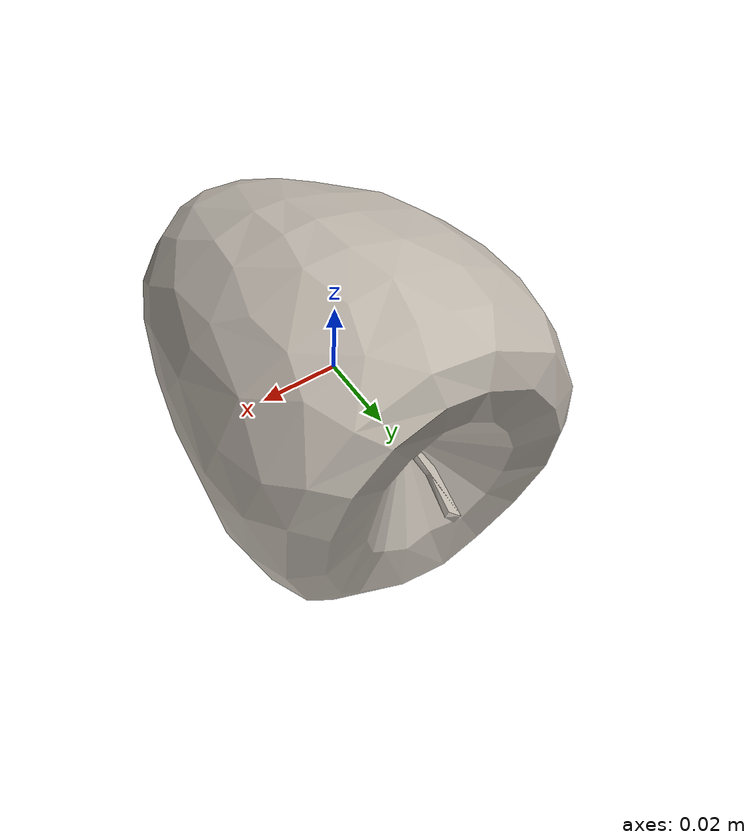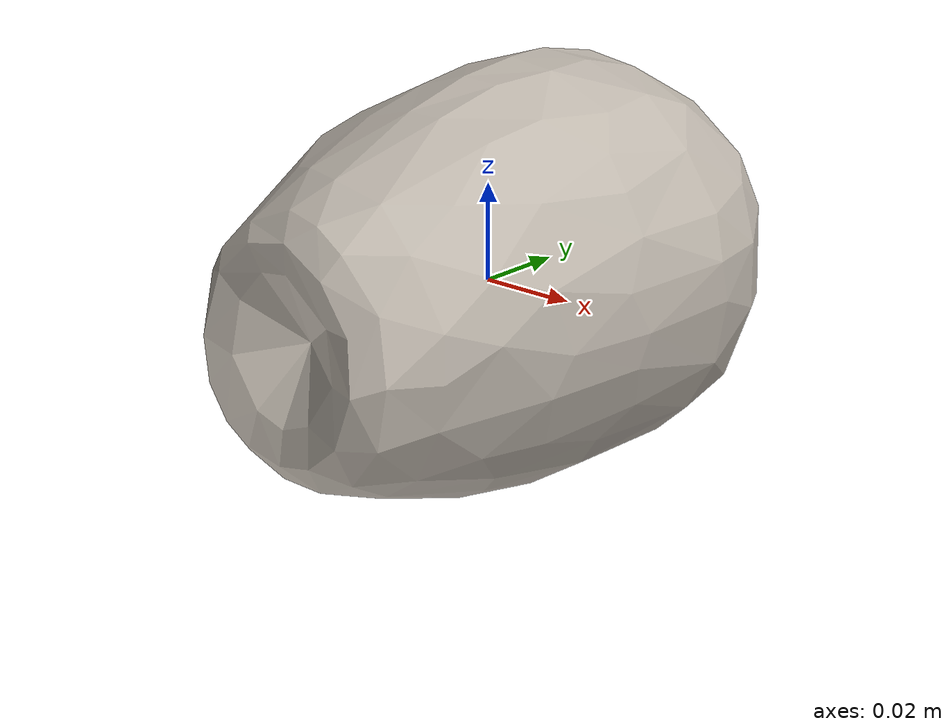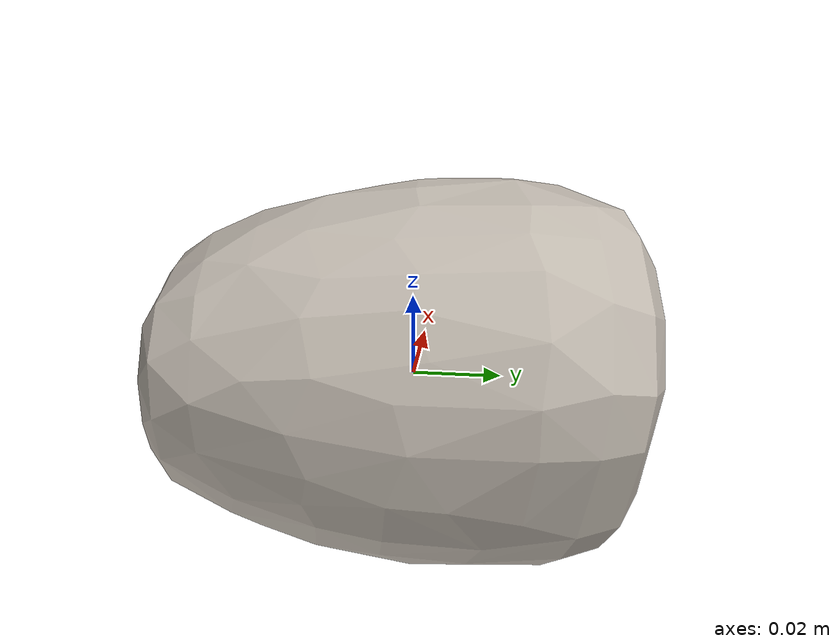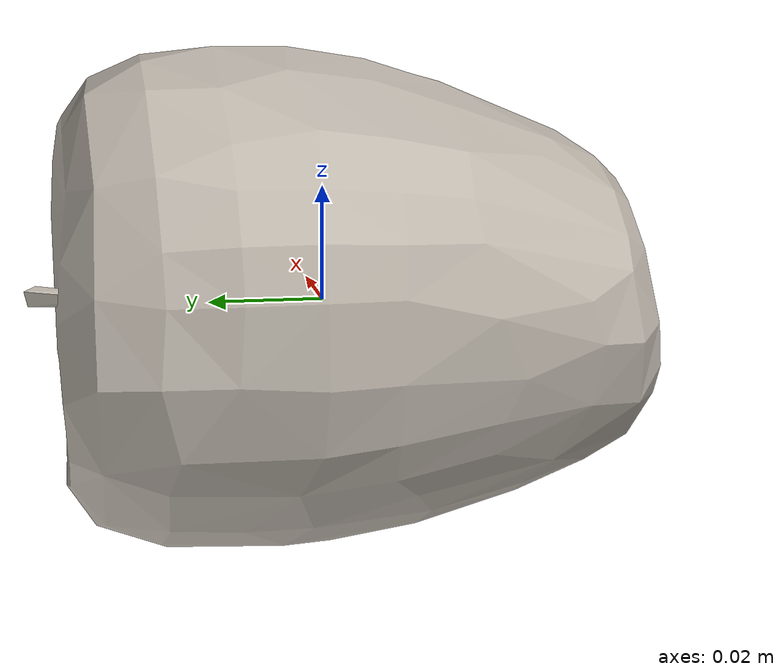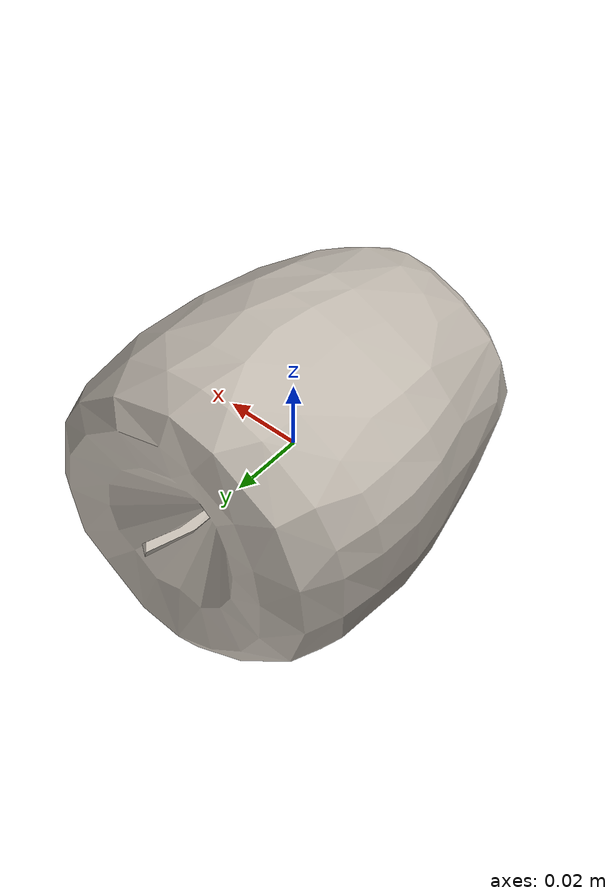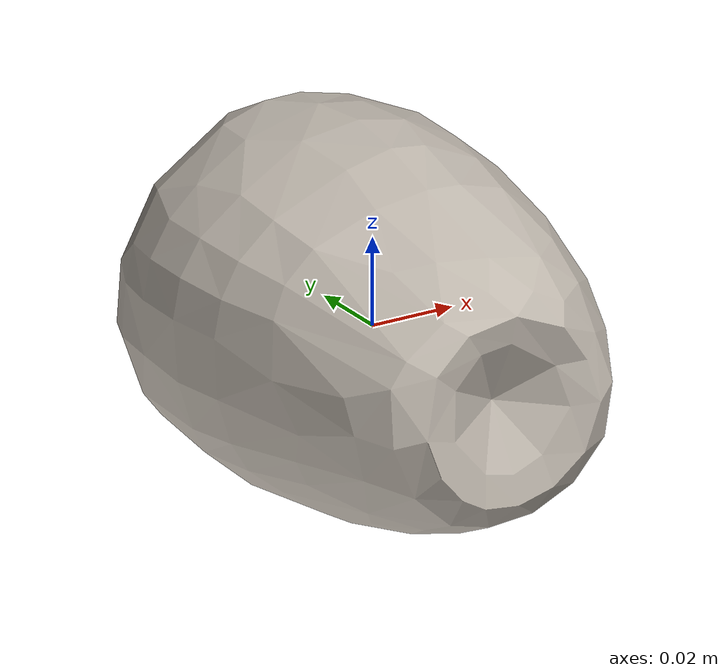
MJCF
<mujoco model="Apple_16">
  <compiler autolimits="true" boundmass="0.01" angle="radian"/>
  <default>
    <default class="/">
      <default class="__VISUAL_MJT__">
        <geom contype="0" conaffinity="0" group="0"/>
      </default>
      <default class="__STRUCTURAL_MJT__">
        <geom contype="8" conaffinity="15" group="4" friction="0.90000000000000002 0.90000000000000002 0.001" solref="0.025000000000000001 1" solimp="0.998 0.998 0.001"/>
      </default>
      <default class="__DYNAMIC_MJT__">
        <geom contype="1" conaffinity="15" group="4" friction="0.90000000000000002 0.90000000000000002 0.001" solref="0.025000000000000001 1" solimp="0.998 0.998 0.001"/>
      </default>
    </default>
  </default>
  <asset>
    <texture name="Apple2_Mat1" type="2d" file="Apple2_AlbedoTransparency1.png"/>
    <material name="material_Apple2_Mat1" class="/" texture="Apple2_Mat1" specular="0.5" shininess="0.5" rgba="1 1 1 1"/>
    <mesh name="Apple_16_apple_b1" class="/" file="Apple_16_apple_b1/Apple_16_apple_b1.obj" scale="1 1 1"/>
  </asset>
  <worldbody>
    <body name="Apple_16">
      <joint name="Apple_16_free" class="/" type="free" pos="0 0 0" axis="0 0 1" stiffness="0" range="0 0" armature="0" damping="0.10000000000000001" frictionloss="0"/>
      <body name="Apple_16_apple_b1" pos="-0 -0.0094000000000000004 0" quat="1 0 0 0">
        <geom name="Apple_16_apple_b1" class="__VISUAL_MJT__" type="mesh" material="material_Apple2_Mat1" shellinertia="false" mesh="Apple_16_apple_b1"/>
        <geom name="Apple_16_PrimitiveCollider_0" class="__DYNAMIC_MJT__" type="capsule" size="0.044999781996011734 0.016265872865915298" rgba="0 1 0 1" pos="-0 0.009395301342010498 0" quat="0.70710678118654757 0.70710678118654746 0 0"/>
      </body>
    </body>
  </worldbody>
</mujoco>
